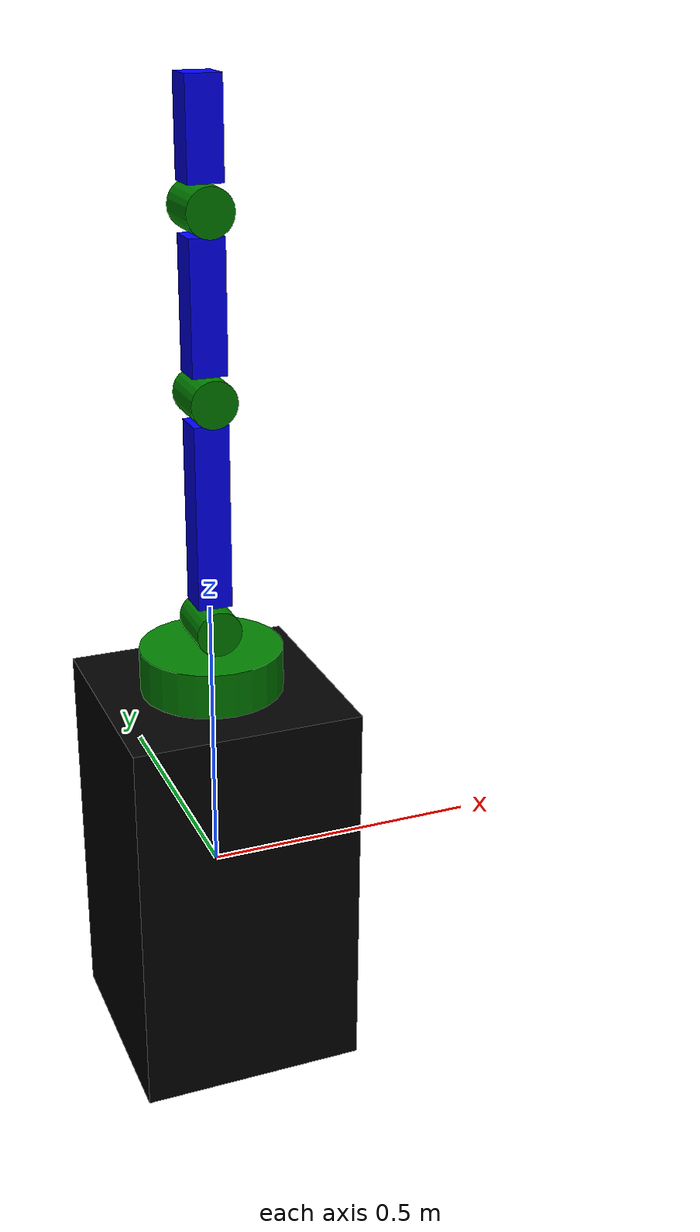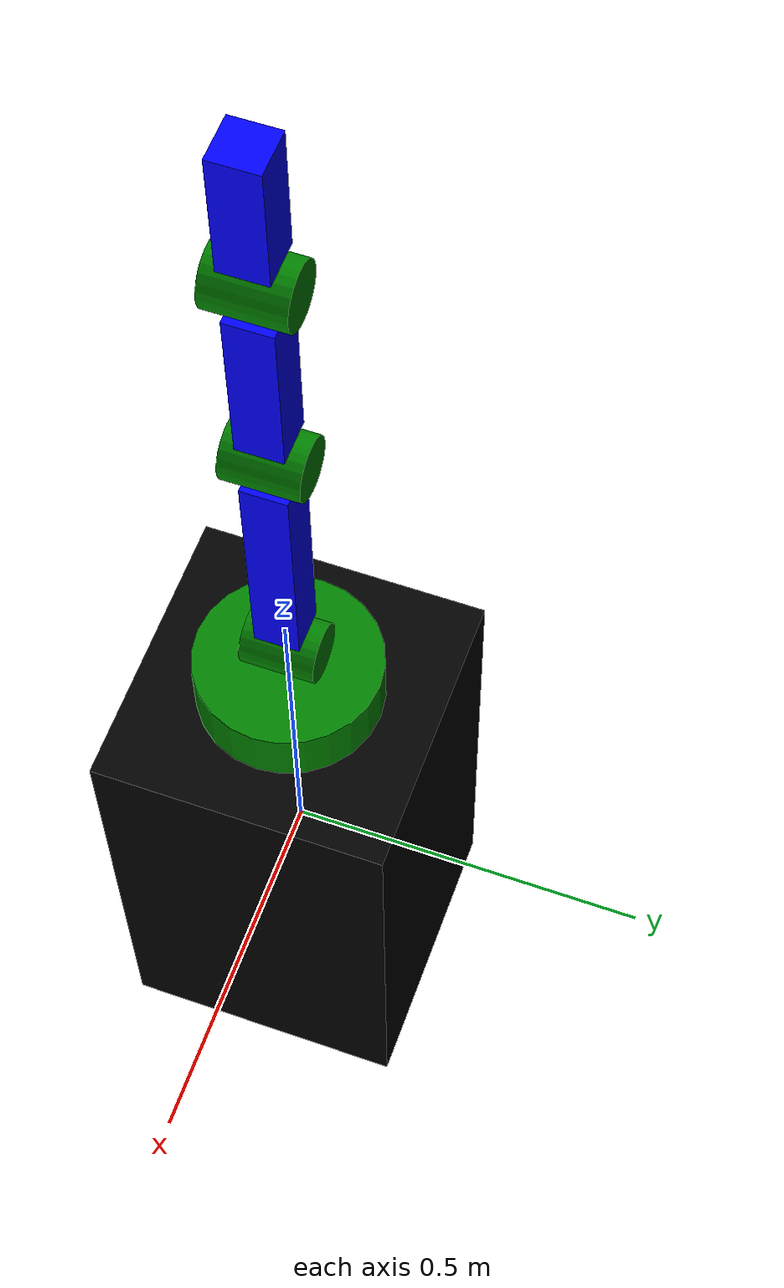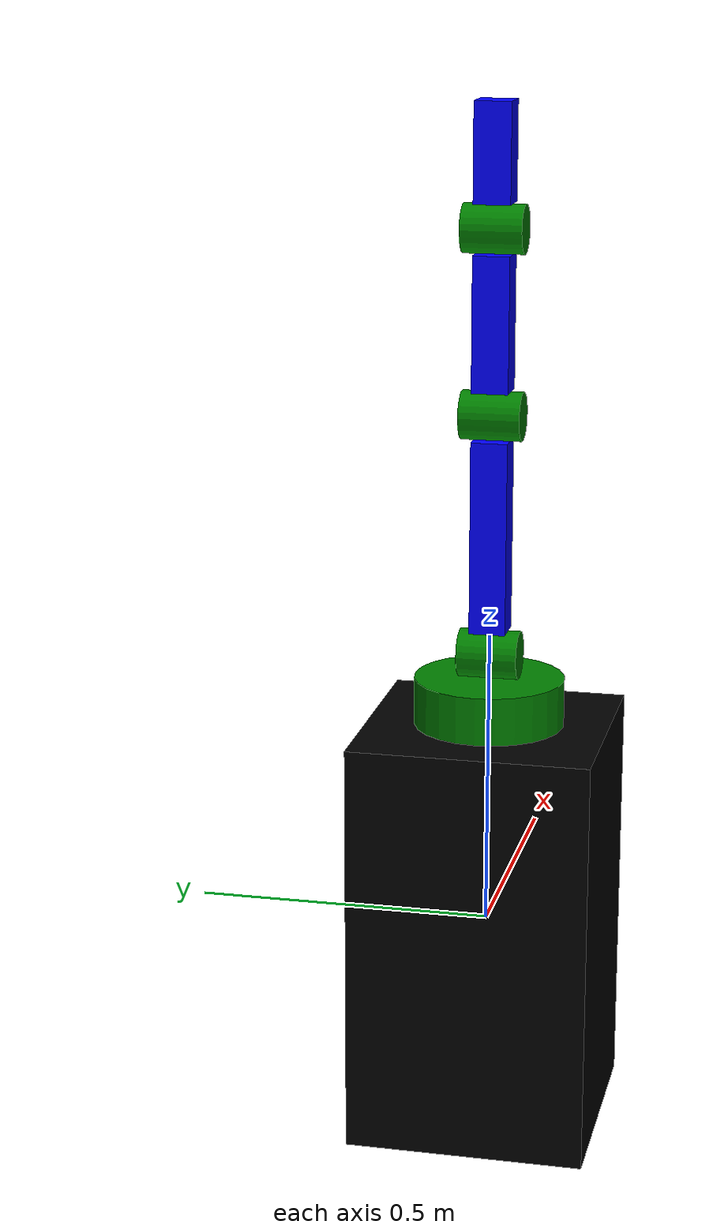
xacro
<?xml version="1.0"?>
<robot xmlns:xacro="http://www.ros.org/wiki/xacro" name="my_robot_arm">

<material name="blue">
    <color rgba="0.0 0.0 1.0 1"/>
</material>

<material name="green">
    <color rgba="0.0 0.5 0.0 1"/>
</material>

<material name="green_light">
      <color rgba="0.0 1.0 0.0 1"/>
  </material>

<material name="black">
      <color rgba="0.0 0.0 0.0 1"/>
  </material>

<xacro:property name="first_arm_length" value="0.32"/>
<xacro:property name="second_arm_length" value="0.22"/>
<xacro:property name="third_arm_length" value="0.16"/>

<xacro:property name="arm_width" value="0.06"/>
<xacro:property name="arm_depth" value="0.06"/>

<xacro:property name="first_arm_mass" value="${first_arm_length*arm_width*arm_depth/7900}"/>
<xacro:property name="second_arm_mass" value="${second_arm_length*arm_width*arm_depth/7900}"/>
<xacro:property name="third_arm_mass" value="${third_arm_length*arm_width*arm_depth/7900}"/>

<xacro:property name="revolute_joint_radius" value="0.04"/>
<xacro:property name="revolute_joint_length" value="0.1"/>
<xacro:property name="revolute_joint_mass" value="${(3.1415*revolute_joint_radius*revolute_joint_radius*revolute_joint_length)/7900}"/>

<xacro:property name="waist_joint_radius" value="0.125"/>
<xacro:property name="waist_joint_length" value="0.08"/>
<xacro:property name="waist_joint_mass" value="${(3.1415*waist_joint_radius*waist_joint_radius*waist_joint_length)/7900}"/>

<xacro:property name="robot_stand_length" value="0.7"/>
<xacro:property name="robot_stand_width" value="0.4"/>
<xacro:property name="robot_stand_depth" value="0.4"/>
<xacro:property name="robot_stand_mass" value="${robot_stand_length*robot_stand_width*robot_stand_depth/7900}"/>

<xacro:macro name="rectangular_link" params="arm_name arm_length arm_width arm_depth arm_mass roll pitch yaw x y z material" >
    <link name="${arm_name}">
        <visual>
            <origin rpy="${roll} ${pitch} ${yaw}" xyz="${x} ${y} ${z}"/>
            <geometry>
                <box size="${arm_depth} ${arm_width} ${arm_length}"/>
            </geometry>
            <material name="${material}"/>
        </visual>

        <collision>
            <origin rpy="${roll} ${pitch} ${yaw}" xyz="${x} ${y} ${z}"/>
            <geometry>
                <box size="${arm_depth} ${arm_width} ${arm_length}"/>
            </geometry>
        </collision>

        <inertial>
            <origin rpy="0 0 0" xyz="0 0 0"/>
            <mass value="${arm_mass}"/>
            <inertia ixx="${(arm_mass/12)*(arm_width*arm_width + arm_length*arm_length)}" ixy="0" ixz="0"
                     iyy="${(arm_mass/12)*(arm_depth*arm_depth + arm_length*arm_length)}" iyz="0"
                     izz="${(arm_mass/12)*(arm_depth*arm_depth + arm_width*arm_width)}"/>
        </inertial>
    </link>
</xacro:macro>

<xacro:macro name="revolute_link" params="revolute_link_name revolute_link_length revolute_link_radius revolute_link_mass" >
    <link name="${revolute_link_name}">
        <visual>
            <origin rpy="0 1.5707 1.5707" xyz="0 0 0"/>
            <geometry>
                <cylinder length="${revolute_link_length}" radius="${revolute_joint_radius}"/>
            </geometry>
            <material name="green"/>
        </visual>

        <collision>
            <origin rpy="0 1.5707 1.5707" xyz="0 0 0"/>
            <geometry>
                <cylinder length="${revolute_link_length}" radius="${revolute_joint_radius}"/>
            </geometry>
        </collision>

        <inertial>
            <origin rpy="0 0 0" xyz="0 0 0"/>
            <mass value="${revolute_link_mass}"/>
            <inertia ixx="${(revolute_link_mass/12)*(revolute_joint_radius*revolute_joint_radius) + (revolute_link_mass/12)*(revolute_joint_length*revolute_joint_length)}" ixy="0" ixz="0"
                     iyy="${(revolute_link_mass/12)*(revolute_joint_radius*revolute_joint_radius) + (revolute_link_mass/12)*(revolute_joint_length*revolute_joint_length)}" iyz="0"
                     izz="${(revolute_link_mass/12)*(revolute_joint_radius*revolute_joint_radius)}"/>
        </inertial>
    </link>
</xacro:macro>

<xacro:macro name="waist_link_xacro" params="waist_link_name waist_link_length waist_link_radius waist_link_mass" >
    <link name="${waist_link_name}">
        <visual>
            <origin rpy="0 0 0" xyz="0 0 0"/>
            <geometry>
                <cylinder length="${waist_link_length}" radius="${waist_link_radius}"/>
            </geometry>
            <material name="green"/>
        </visual>

        <collision>
            <origin rpy="0 0 0" xyz="0 0 0"/>
            <geometry>
                <cylinder length="${waist_link_length}" radius="${waist_link_radius}"/>
            </geometry>
        </collision>

        <inertial>
            <origin rpy="0 0 0" xyz="0 0 0"/>
            <mass value="${waist_link_mass}"/>
            <inertia ixx="${(waist_link_mass/12)*(waist_link_radius*waist_link_radius) + (waist_link_mass/12)*(waist_link_length*waist_link_length)}" ixy="0" ixz="0"
                    iyy="${(waist_link_mass/12)*(waist_link_radius*waist_link_radius) + (waist_link_mass/12)*(waist_link_length*waist_link_length)}" iyz="0"
                    izz="${(waist_link_mass/12)*(waist_joint_radius*waist_joint_radius)}"/>
            </inertial>
    </link>
</xacro:macro>

    <xacro:rectangular_link arm_name="robot_stand" arm_length="${robot_stand_length}" arm_depth="${robot_stand_depth}"
                            arm_width="${robot_stand_width}" arm_mass="${robot_stand_mass}" roll="0" pitch="0" yaw="0" x="0" y="0" z="0" material="black"/>

    <xacro:rectangular_link arm_name="first_arm" arm_length="${first_arm_length}" arm_depth="${arm_depth}"
                            arm_width="${arm_width}" arm_mass="${first_arm_mass}" roll="0" pitch="0" yaw="0" x="0" y="0" z="${first_arm_length/2}" material="blue"/>

    <xacro:rectangular_link arm_name="second_arm" arm_length="${second_arm_length}" arm_depth="${arm_depth}"
                            arm_width="${arm_width}" arm_mass="${second_arm_mass}" roll="0" pitch="0" yaw="0" x="0" y="0" z="${second_arm_length/2}" material="blue"/>

    <xacro:rectangular_link arm_name="third_arm" arm_length="${third_arm_length}" arm_depth="${arm_depth}"
                            arm_width="${arm_width}" arm_mass="${third_arm_mass}" roll="0" pitch="0" yaw="0" x="0" y="0" z="${third_arm_length/2}" material="blue"/>

    <xacro:waist_link_xacro waist_link_name="waist_link" waist_link_length="${waist_joint_length}" waist_link_radius="${waist_joint_radius}"
                            waist_link_mass="${waist_joint_mass}" />

    <xacro:revolute_link revolute_link_name="shoulder_link" revolute_link_length="${revolute_joint_length}" revolute_link_radius="${revolute_joint_radius}"
                            revolute_link_mass="${revolute_joint_mass}" />

    <xacro:revolute_link revolute_link_name="elbow_link" revolute_link_length="${revolute_joint_length}" revolute_link_radius="${revolute_joint_radius}"
                            revolute_link_mass="${revolute_joint_mass}" />

    <xacro:revolute_link revolute_link_name="wrist_link" revolute_link_length="${revolute_joint_length}" revolute_link_radius="${revolute_joint_radius}"
                            revolute_link_mass="${revolute_joint_mass}" />

    <link name="base_link">
    </link>

    <joint name="base_link_joint" type="fixed">
        <origin rpy="0 0 0" xyz="0 0 0" />
        <parent link="base_link" />
        <child link="robot_stand" />
    </joint>

    <joint name="waist_stand_robot_joint" type="continuous">
        <origin rpy="0 0 0" xyz="0 0 ${(robot_stand_length+waist_joint_length)/2}"/>
        <child link="waist_link"/>
        <parent link="robot_stand"/>
        <axis rpy="0 0 0" xyz="0 0 1"/>
        <limit effort="10000" velocity="1000"/>
        <joint_properties damping="1.0" friction="1.0"/>
    </joint>

    <joint name="shoulder_waist_joint" type="continuous">
        <origin rpy="0 0 0" xyz="0 0 ${revolute_joint_radius+waist_joint_length/2}"/>
        <child link="shoulder_link"/>
        <parent link="waist_link"/>
        <axis rpy="0 0 0" xyz="0 1 0"/>
        <limit effort="10000" velocity="1000"/>
        <joint_properties damping="1.0" friction="1.0"/>
    </joint>

    <joint name="first_arm_shoulder_joint" type="fixed">
        <origin rpy="0 0 0" xyz="0 0 ${revolute_joint_radius}" />
        <parent link="shoulder_link" />
        <child link="first_arm" />
    </joint>

    <joint name="elbow_first_arm_joint" type="continuous">
        <origin rpy="0 0 0" xyz="0 0 ${first_arm_length+revolute_joint_radius}"/>
        <child link="elbow_link"/>
        <parent link="first_arm"/>
        <axis rpy="0 0 0" xyz="0 1 0"/>
        <limit effort="10000" velocity="1000"/>
        <joint_properties damping="1.0" friction="1.0"/>
    </joint>

    <joint name="second_arm_elbow_joint" type="fixed">
        <origin rpy="0 0 0" xyz="0 0 ${revolute_joint_radius}" />
        <parent link="elbow_link" />
        <child link="second_arm" />
    </joint>

    <joint name="wrist_second_arm_joint" type="continuous">
        <origin rpy="0 0 0" xyz="0 0 ${second_arm_length+revolute_joint_radius}"/>
        <child link="wrist_link"/>
        <parent link="second_arm"/>
        <axis rpy="0 0 0" xyz="0 1 0"/>
        <limit effort="10000" velocity="1000"/>
        <joint_properties damping="1.0" friction="1.0"/>
    </joint>

    <joint name="third_arm_wrist_joint" type="fixed">
        <origin rpy="0 0 0" xyz="0 0 ${revolute_joint_radius}" />
        <parent link="wrist_link" />
        <child link="third_arm" />
    </joint>

</robot>
